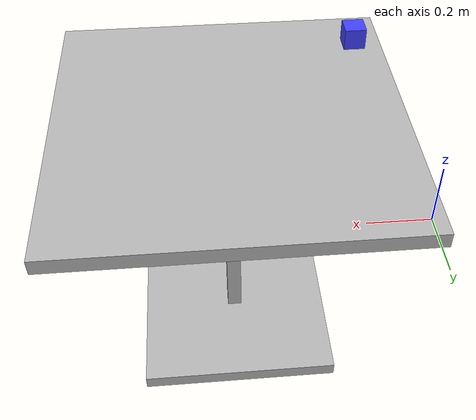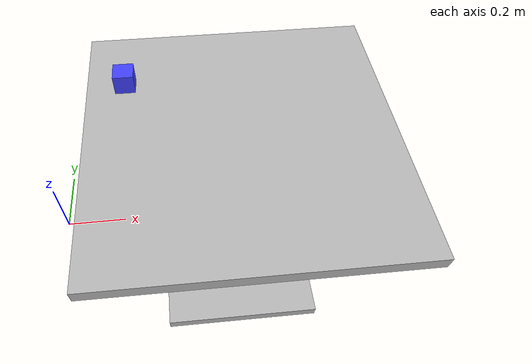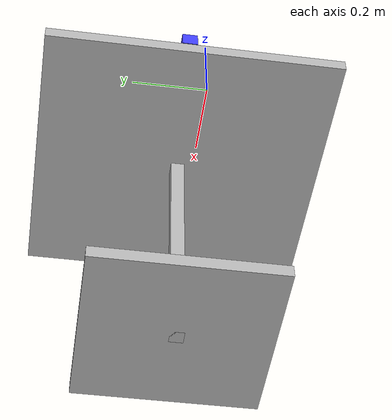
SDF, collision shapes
<?xml version="1.0"?>
<sdf version='1.7'>

    <model name="throwing_object">
        <pose>0.3 0 0.65 0 0 0</pose>
        <link name="throwing_object_link">
            <inertial>
                <inertia>
                    <ixx>0.00005</ixx>
                    <ixy>0.0</ixy>
                    <ixz>0.0</ixz>
                    <iyy>0.00005</iyy>
                    <iyz>0.0</iyz>
                    <izz>0.00005</izz>
                </inertia>
                <mass>0.12</mass>
            </inertial>
            <collision name="throwing_object_collision">
                <geometry>
                    <box>
                        <size>0.05 0.05 0.05</size>
                    </box>
                </geometry>
            </collision>
            <visual name="throwing_object_visual">
                <geometry>
                    <box>
                        <size>0.05 0.05 0.05</size>
                    </box>
                </geometry>
                <material>
                    <ambient>0.25 0.25 1 1</ambient>
                    <diffuse>0.25 0.25 1 1</diffuse>
                    <specular>0.25 0.25 1 1</specular>
                </material>
            </visual>
        </link>

    </model>
    <include>
        <pose>0.6 0 -0.35 0 0 0</pose>
        <uri>https://fuel.ignitionrobotics.org/1.0/OpenRobotics/models/Cafe table</uri>
    </include>
</sdf>

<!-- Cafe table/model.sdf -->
<sdf version="1.5">
  <model name="Cafe table">
    <static>true</static>
    <link name="link">
      <collision name="surface">
        <pose>0 0 0.755 0 0 0</pose>
        <geometry>
          <box>
            <size>0.913 0.913 0.04</size>
          </box>
        </geometry>
      </collision>

      <collision name="column">
        <pose>0 0 0.37 0 0 0</pose>
        <geometry>
          <box>
            <size>0.042 0.042 0.74</size>
          </box>
        </geometry>
      </collision>

      <collision name="base">
        <pose>0 0 0.02 0 0 0</pose>
        <geometry>
          <box>
            <size>0.56 0.56 0.04</size>
          </box>
        </geometry>
      </collision>

      <visual name="visual">
        <geometry>
          <mesh>
            <uri>model://Cafe table/meshes/cafe_table.dae</uri>
          </mesh>
        </geometry>
      </visual>
    </link>
  </model>
</sdf>
